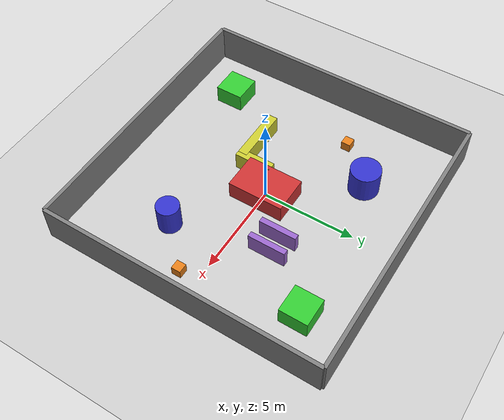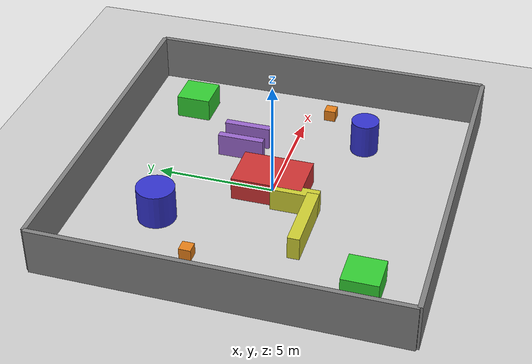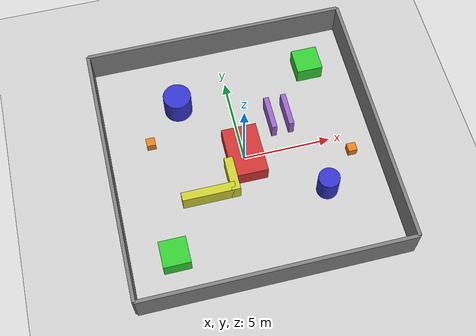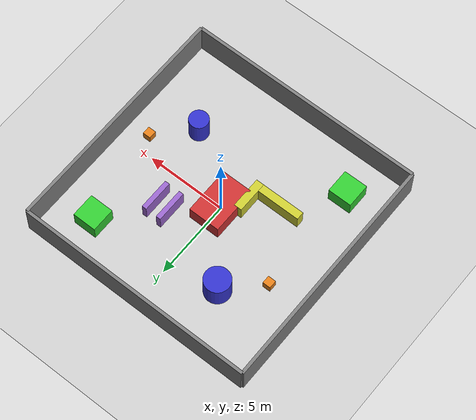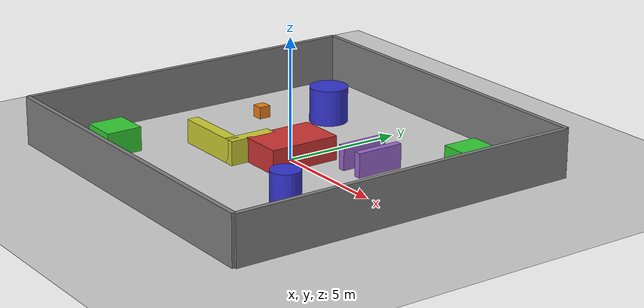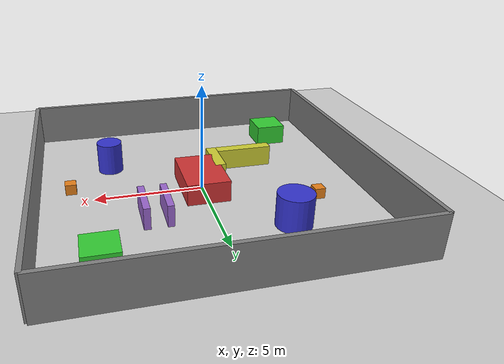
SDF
<?xml version="1.0" ?>
<sdf version="1.6">
  <world name="unknown_environment">

    <!-- Basic world settings -->
    <include>
      <uri>model://ground_plane</uri>
    </include>

    <include>
      <uri>model://sun</uri>
    </include>

    <!-- Physics settings for stable simulation -->
    <physics name="default_physics" default="0" type="ode">
      <ode>
        <solver>
          <type>quick</type>
          <iters>10</iters>
          <sor>1.3</sor>
        </solver>
        <constraints>
          <cfm>0</cfm>
          <erp>0.2</erp>
          <contact_max_correcting_vel>100</contact_max_correcting_vel>
          <contact_surface_layer>0.001</contact_surface_layer>
        </constraints>
      </ode>
      <max_step_size>0.004</max_step_size>
      <real_time_factor>1</real_time_factor>
      <real_time_update_rate>250</real_time_update_rate>
    </physics>

    <!-- Set gravity separately -->
    <gravity>0 0 -9.8066</gravity>

    <!-- Lighting -->
    <scene>
      <ambient>0.4 0.4 0.4 1</ambient>
      <background>0.7 0.7 0.7 1</background>
      <shadows>true</shadows>
    </scene>

    <!-- Create walls to define the environment boundaries -->

    <!-- North Wall -->
    <model name="north_wall">
      <static>true</static>
      <link name="link">
        <collision name="collision">
          <geometry>
            <box>
              <size>15 0.2 2</size>
            </box>
          </geometry>
        </collision>
        <visual name="visual">
          <geometry>
            <box>
              <size>15 0.2 2</size>
            </box>
          </geometry>
          <material>
            <ambient>0.5 0.5 0.5 1</ambient>
            <diffuse>0.5 0.5 0.5 1</diffuse>
            <specular>0 0 0 1</specular>
            <emissive>0 0 0 0</emissive>
          </material>
        </visual>
      </link>
      <pose>0 7.5 1 0 0 0</pose>
    </model>

    <!-- South Wall -->
    <model name="south_wall">
      <static>true</static>
      <link name="link">
        <collision name="collision">
          <geometry>
            <box>
              <size>15 0.2 2</size>
            </box>
          </geometry>
        </collision>
        <visual name="visual">
          <geometry>
            <box>
              <size>15 0.2 2</size>
            </box>
          </geometry>
          <material>
            <ambient>0.5 0.5 0.5 1</ambient>
            <diffuse>0.5 0.5 0.5 1</diffuse>
            <specular>0 0 0 1</specular>
            <emissive>0 0 0 0</emissive>
          </material>
        </visual>
      </link>
      <pose>0 -7.5 1 0 0 0</pose>
    </model>

    <!-- East Wall -->
    <model name="east_wall">
      <static>true</static>
      <link name="link">
        <collision name="collision">
          <geometry>
            <box>
              <size>0.2 15 2</size>
            </box>
          </geometry>
        </collision>
        <visual name="visual">
          <geometry>
            <box>
              <size>0.2 15 2</size>
            </box>
          </geometry>
          <material>
            <ambient>0.5 0.5 0.5 1</ambient>
            <diffuse>0.5 0.5 0.5 1</diffuse>
            <specular>0 0 0 1</specular>
            <emissive>0 0 0 0</emissive>
          </material>
        </visual>
      </link>
      <pose>7.5 0 1 0 0 0</pose>
    </model>

    <!-- West Wall -->
    <model name="west_wall">
      <static>true</static>
      <link name="link">
        <collision name="collision">
          <geometry>
            <box>
              <size>0.2 15 2</size>
            </box>
          </geometry>
        </collision>
        <visual name="visual">
          <geometry>
            <box>
              <size>0.2 15 2</size>
            </box>
          </geometry>
          <material>
            <ambient>0.5 0.5 0.5 1</ambient>
            <diffuse>0.5 0.5 0.5 1</diffuse>
            <specular>0 0 0 1</specular>
            <emissive>0 0 0 0</emissive>
          </material>
        </visual>
      </link>
      <pose>-7.5 0 1 0 0 0</pose>
    </model>

    <!-- Interior obstacles for interesting SLAM challenges -->

    <!-- Large central obstacle -->
    <model name="central_obstacle">
      <static>true</static>
      <link name="link">
        <collision name="collision">
          <geometry>
            <box>
              <size>2 3 1</size>
            </box>
          </geometry>
        </collision>
        <visual name="visual">
          <geometry>
            <box>
              <size>2 3 1</size>
            </box>
          </geometry>
          <material>
            <ambient>0.8 0.2 0.2 1</ambient>
            <diffuse>0.8 0.2 0.2 1</diffuse>
            <specular>0 0 0 1</specular>
            <emissive>0 0 0 0</emissive>
          </material>
        </visual>
      </link>
      <pose>0 0 0.5 0 0 0</pose>
    </model>

    <!-- Corner obstacles -->
    <model name="corner_obstacle_1">
      <static>true</static>
      <link name="link">
        <collision name="collision">
          <geometry>
            <box>
              <size>1.5 1.5 1</size>
            </box>
          </geometry>
        </collision>
        <visual name="visual">
          <geometry>
            <box>
              <size>1.5 1.5 1</size>
            </box>
          </geometry>
          <material>
            <ambient>0.2 0.8 0.2 1</ambient>
            <diffuse>0.2 0.8 0.2 1</diffuse>
            <specular>0 0 0 1</specular>
            <emissive>0 0 0 0</emissive>
          </material>
        </visual>
      </link>
      <pose>5 5 0.5 0 0 0</pose>
    </model>

    <model name="corner_obstacle_2">
      <static>true</static>
      <link name="link">
        <collision name="collision">
          <geometry>
            <box>
              <size>1.5 1.5 1</size>
            </box>
          </geometry>
        </collision>
        <visual name="visual">
          <geometry>
            <box>
              <size>1.5 1.5 1</size>
            </box>
          </geometry>
          <material>
            <ambient>0.2 0.8 0.2 1</ambient>
            <diffuse>0.2 0.8 0.2 1</diffuse>
            <specular>0 0 0 1</specular>
            <emissive>0 0 0 0</emissive>
          </material>
        </visual>
      </link>
      <pose>-5 -5 0.5 0 0 0</pose>
    </model>

    <!-- Cylindrical obstacles for variety -->
    <model name="cylinder_obstacle_1">
      <static>true</static>
      <link name="link">
        <collision name="collision">
          <geometry>
            <cylinder>
              <radius>0.8</radius>
              <length>1.5</length>
            </cylinder>
          </geometry>
        </collision>
        <visual name="visual">
          <geometry>
            <cylinder>
              <radius>0.8</radius>
              <length>1.5</length>
            </cylinder>
          </geometry>
          <material>
            <ambient>0.2 0.2 0.8 1</ambient>
            <diffuse>0.2 0.2 0.8 1</diffuse>
            <specular>0 0 0 1</specular>
            <emissive>0 0 0 0</emissive>
          </material>
        </visual>
      </link>
      <pose>-3 4 0.75 0 0 0</pose>
    </model>

    <model name="cylinder_obstacle_2">
      <static>true</static>
      <link name="link">
        <collision name="collision">
          <geometry>
            <cylinder>
              <radius>0.6</radius>
              <length>1.5</length>
            </cylinder>
          </geometry>
        </collision>
        <visual name="visual">
          <geometry>
            <cylinder>
              <radius>0.6</radius>
              <length>1.5</length>
            </cylinder>
          </geometry>
          <material>
            <ambient>0.2 0.2 0.8 1</ambient>
            <diffuse>0.2 0.2 0.8 1</diffuse>
            <specular>0 0 0 1</specular>
            <emissive>0 0 0 0</emissive>
          </material>
        </visual>
      </link>
      <pose>4 -3 0.75 0 0 0</pose>
    </model>

    <!-- L-shaped obstacle for complex geometry -->
    <model name="l_obstacle_1">
      <static>true</static>
      <link name="link">
        <collision name="collision">
          <geometry>
            <box>
              <size>3 0.5 1</size>
            </box>
          </geometry>
        </collision>
        <visual name="visual">
          <geometry>
            <box>
              <size>3 0.5 1</size>
            </box>
          </geometry>
          <material>
            <ambient>0.8 0.8 0.2 1</ambient>
            <diffuse>0.8 0.8 0.2 1</diffuse>
            <specular>0 0 0 1</specular>
            <emissive>0 0 0 0</emissive>
          </material>
        </visual>
      </link>
      <pose>-2.5 -2 0.5 0 0 0</pose>
    </model>

    <model name="l_obstacle_2">
      <static>true</static>
      <link name="link">
        <collision name="collision">
          <geometry>
            <box>
              <size>0.5 2 1</size>
            </box>
          </geometry>
        </collision>
        <visual name="visual">
          <geometry>
            <box>
              <size>0.5 2 1</size>
            </box>
          </geometry>
          <material>
            <ambient>0.8 0.8 0.2 1</ambient>
            <diffuse>0.8 0.8 0.2 1</diffuse>
            <specular>0 0 0 1</specular>
            <emissive>0 0 0 0</emissive>
          </material>
        </visual>
      </link>
      <pose>-1 -1.25 0.5 0 0 0</pose>
    </model>

    <!-- Narrow passage obstacles -->
    <model name="passage_obstacle_1">
      <static>true</static>
      <link name="link">
        <collision name="collision">
          <geometry>
            <box>
              <size>0.3 2 1</size>
            </box>
          </geometry>
        </collision>
        <visual name="visual">
          <geometry>
            <box>
              <size>0.3 2 1</size>
            </box>
          </geometry>
          <material>
            <ambient>0.6 0.4 0.8 1</ambient>
            <diffuse>0.6 0.4 0.8 1</diffuse>
            <specular>0 0 0 1</specular>
            <emissive>0 0 0 0</emissive>
          </material>
        </visual>
      </link>
      <pose>2 2 0.5 0 0 0</pose>
    </model>

    <model name="passage_obstacle_2">
      <static>true</static>
      <link name="link">
        <collision name="collision">
          <geometry>
            <box>
              <size>0.3 2 1</size>
            </box>
          </geometry>
        </collision>
        <visual name="visual">
          <geometry>
            <box>
              <size>0.3 2 1</size>
            </box>
          </geometry>
          <material>
            <ambient>0.6 0.4 0.8 1</ambient>
            <diffuse>0.6 0.4 0.8 1</diffuse>
            <specular>0 0 0 1</specular>
            <emissive>0 0 0 0</emissive>
          </material>
        </visual>
      </link>
      <pose>3 2 0.5 0 0 0</pose>
    </model>

    <!-- Additional small obstacles for complexity -->
    <model name="small_obstacle_1">
      <static>true</static>
      <link name="link">
        <collision name="collision">
          <geometry>
            <box>
              <size>0.5 0.5 0.5</size>
            </box>
          </geometry>
        </collision>
        <visual name="visual">
          <geometry>
            <box>
              <size>0.5 0.5 0.5</size>
            </box>
          </geometry>
          <material>
            <ambient>0.9 0.5 0.1 1</ambient>
            <diffuse>0.9 0.5 0.1 1</diffuse>
            <specular>0 0 0 1</specular>
            <emissive>0 0 0 0</emissive>
          </material>
        </visual>
      </link>
      <pose>-5 2 0.25 0 0 0</pose>
    </model>

    <model name="small_obstacle_2">
      <static>true</static>
      <link name="link">
        <collision name="collision">
          <geometry>
            <box>
              <size>0.5 0.5 0.5</size>
            </box>
          </geometry>
        </collision>
        <visual name="visual">
          <geometry>
            <box>
              <size>0.5 0.5 0.5</size>
            </box>
          </geometry>
          <material>
            <ambient>0.9 0.5 0.1 1</ambient>
            <diffuse>0.9 0.5 0.1 1</diffuse>
            <specular>0 0 0 1</specular>
            <emissive>0 0 0 0</emissive>
          </material>
        </visual>
      </link>
      <pose>6 -1 0.25 0 0 0</pose>
    </model>

  </world>
</sdf>
